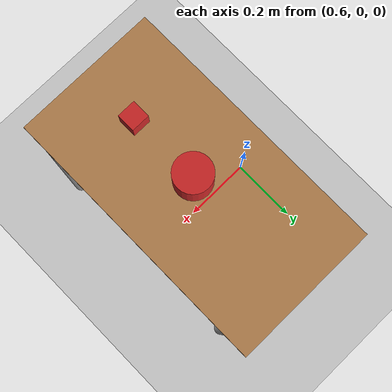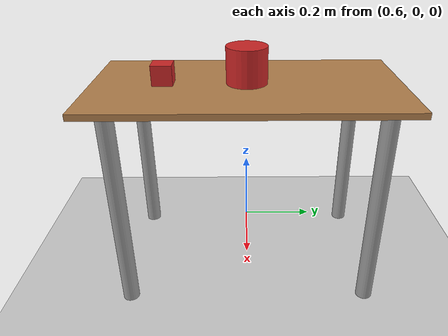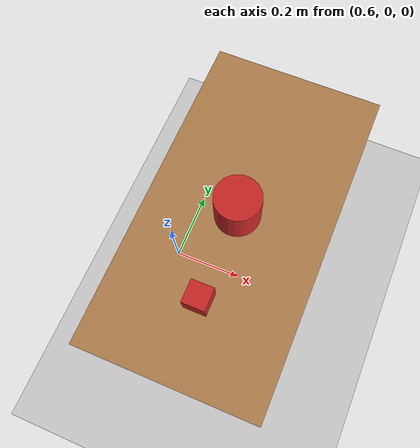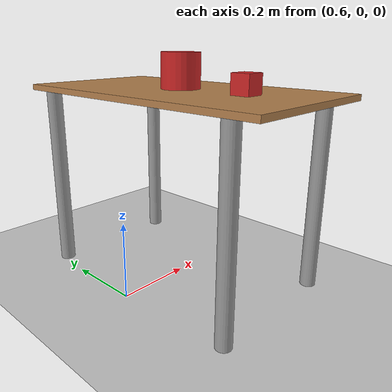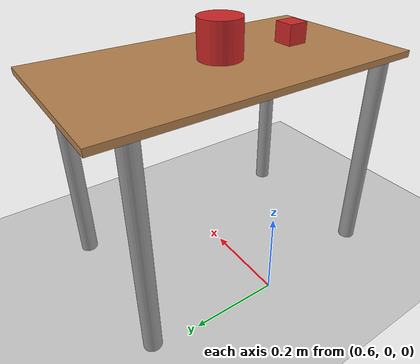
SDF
<sdf version="1.6">
 <world name="stereo_objects_world">
  <scene><ambient>0 0 0 1</ambient><shadows>0</shadows><background>0.7 0.7 0.7 1</background></scene>
  <model name="ground_plane">
   <static>1</static>
   <link name="link">
    <collision name="collision">
     <geometry><plane><normal>0 0 1</normal><size>100 100</size></plane></geometry>
     <surface><friction><ode><mu>100</mu><mu2>50</mu2></ode></friction></surface>
    </collision>
    <visual name="visual">
     <cast_shadows>0</cast_shadows>
     <geometry><plane><normal>0 0 1</normal><size>100 100</size></plane></geometry>
     <material>
      <script><uri>file://media/materials/scripts/gazebo.material</uri><name>Gazebo/Grey</name></script>
     </material>
    </visual>
   </link>
  </model>
  <model name="table">
   <static>1</static>
   <link name="link">
    <collision name="surface">
     <pose>0 0 0.5 0 -0 0</pose>
     <geometry><box><size>0.75 0.4 0.015</size></box></geometry>
     <surface><friction><ode><mu>0.6</mu><mu2>0.6</mu2></ode></friction></surface>
    </collision>
    <visual name="visual1">
     <pose>0 0 0.5 0 -0 0</pose>
     <geometry><box><size>0.75 0.4 0.015</size></box></geometry>
     <material>
      <script><uri>file://media/materials/scripts/gazebo.material</uri><name>Gazebo/Wood</name></script>
     </material>
    </visual>
    <collision name="front_left_leg">
     <pose>0.3 0.18 0.25 0 -0 0</pose>
     <geometry><cylinder><radius>0.02</radius><length>0.5</length></cylinder></geometry>
    </collision>
    <visual name="front_left_leg">
     <pose>0.3 0.18 0.25 0 -0 0</pose>
     <geometry><cylinder><radius>0.02</radius><length>0.5</length></cylinder></geometry>
     <material>
      <script><uri>file://media/materials/scripts/gazebo.material</uri><name>Gazebo/Grey</name></script>
     </material>
    </visual>
    <collision name="front_right_leg">
     <pose>0.3 -0.18 0.25 0 -0 0</pose>
     <geometry><cylinder><radius>0.02</radius><length>0.5</length></cylinder></geometry>
    </collision>
    <visual name="front_right_leg">
     <pose>0.3 -0.18 0.25 0 -0 0</pose>
     <geometry><cylinder><radius>0.02</radius><length>0.5</length></cylinder></geometry>
     <material>
      <script><uri>file://media/materials/scripts/gazebo.material</uri><name>Gazebo/Grey</name></script>
     </material>
    </visual>
    <collision name="back_right_leg">
     <pose>-0.3 -0.18 0.25 0 -0 0</pose>
     <geometry><cylinder><radius>0.02</radius><length>0.5</length></cylinder></geometry>
    </collision>
    <visual name="back_right_leg">
     <pose>-0.3 -0.18 0.25 0 -0 0</pose>
     <geometry><cylinder><radius>0.02</radius><length>0.5</length></cylinder></geometry>
     <material>
      <script><uri>file://media/materials/scripts/gazebo.material</uri><name>Gazebo/Grey</name></script>
     </material>
    </visual>
    <collision name="back_left_leg">
     <pose>-0.3 0.18 0.25 0 -0 0</pose>
     <geometry><cylinder><radius>0.02</radius><length>0.5</length></cylinder></geometry>
    </collision>
    <visual name="back_left_leg">
     <pose>-0.3 0.18 0.25 0 -0 0</pose>
     <geometry><cylinder><radius>0.02</radius><length>0.5</length></cylinder></geometry>
     <material>
      <script><uri>file://media/materials/scripts/gazebo.material</uri><name>Gazebo/Grey</name></script>
     </material>
    </visual>
   </link>
   <pose>0.8 0 0 0 0 -1.57</pose>
  </model>
  <model name="wood_cube_5cm">
   <static>0</static>
   <link name="link">
    <pose>0 0 0.025 0 -0 0</pose>
    <inertial>
     <mass>0.0565</mass>
     <inertia>
      <ixx>2.35417e-05</ixx>
      <ixy>0</ixy>
      <ixz>0</ixz>
      <iyy>2.35417e-05</iyy>
      <iyz>0</iyz>
      <izz>2.35417e-05</izz>
     </inertia>
    </inertial>
    <collision name="collision">
     <geometry><box><size>0.05 0.05 0.05</size></box></geometry>
     <surface>
      <contact>
       <poissons_ratio>0.347</poissons_ratio>
       <elastic_modulus>8.8e+09</elastic_modulus>
       <ode><kp>100000</kp><kd>1</kd><max_vel>1</max_vel><min_depth>0.001</min_depth></ode>
      </contact>
      <friction>
       <torsional>
        <coefficient>1</coefficient>
        <use_patch_radius>0</use_patch_radius>
        <surface_radius>0.05</surface_radius>
       </torsional>
      </friction>
     </surface>
    </collision>
    <visual name="visual">
     <geometry><box><size>0.05 0.05 0.05</size></box></geometry>
     <material>
      <script><uri>file://media/materials/scripts/gazebo.material</uri><name>Gazebo/Red</name></script>
     </material>
    </visual>
   </link>
   <pose>0.8 -0.2 0.506499 0 -0 0</pose>
  </model>
  <model name="wooden_peg">
   <link name="link">
    <pose>0 0 0.04 0 -0 0</pose>
    <inertial>
     <mass>0.0175</mass>
     <inertia>
      <ixx>9.74923e-06</ixx>
      <ixy>0</ixy>
      <ixz>0</ixz>
      <iyy>9.74923e-06</iyy>
      <iyz>0</iyz>
      <izz>8.31797e-07</izz>
     </inertia>
    </inertial>
    <collision name="collision">
     <geometry><cylinder><radius>0.00975</radius><length>0.08</length></cylinder></geometry>
     <surface>
      <contact>
       <poissons_ratio>0.347</poissons_ratio>
       <elastic_modulus>8.8e+09</elastic_modulus>
       <ode><kp>100000</kp><kd>100</kd><max_vel>100</max_vel><min_depth>0.001</min_depth></ode>
      </contact>
      <friction>
       <torsional>
        <coefficient>1</coefficient>
        <use_patch_radius>0</use_patch_radius>
        <surface_radius>0.01</surface_radius>
       </torsional>
      </friction>
     </surface>
    </collision>
    <visual name="visual">
     <geometry><cylinder><radius>0.05</radius><length>0.1</length></cylinder></geometry>
     <material>
      <script><uri>file://media/materials/scripts/gazebo.material</uri><name>Gazebo/Red</name></script>
     </material>
    </visual>
   </link>
   <pose>0.799994 3e-06 0.506572 0.003366 0.006643 1.1e-05</pose>
  </model>
  <gravity>0 0 -9.8</gravity>
  <magnetic_field>6e-06 2.3e-05 -4.2e-05</magnetic_field>
  <atmosphere type="adiabatic"/>
  <physics name="default_physics" default="0" type="ode">
   <max_step_size>0.001</max_step_size>
   <real_time_factor>1</real_time_factor>
   <real_time_update_rate>1000</real_time_update_rate>
  </physics>
  <spherical_coordinates>
   <surface_model>EARTH_WGS84</surface_model>
   <latitude_deg>0</latitude_deg>
   <longitude_deg>0</longitude_deg>
   <elevation>0</elevation>
   <heading_deg>0</heading_deg>
  </spherical_coordinates>
  <light name="user_spot_light_0" type="spot">
   <pose>0.017413 0.007737 1 0 -0 0</pose>
   <diffuse>0.5 0.5 0.5 1</diffuse>
   <specular>0.1 0.1 0.1 1</specular>
   <direction>0 0 -1</direction>
   <attenuation>
    <range>20</range>
    <constant>0.5</constant>
    <linear>0.01</linear>
    <quadratic>0.001</quadratic>
   </attenuation>
   <cast_shadows>0</cast_shadows>
   <spot><inner_angle>0.6</inner_angle><outer_angle>1</outer_angle><falloff>1</falloff></spot>
  </light>
  <light name="user_point_light_0" type="point">
   <pose>0.014903 0.028441 1 0 -0 0</pose>
   <diffuse>0.5 0.5 0.5 1</diffuse>
   <specular>0.1 0.1 0.1 1</specular>
   <attenuation>
    <range>20</range>
    <constant>0.5</constant>
    <linear>0.01</linear>
    <quadratic>0.001</quadratic>
   </attenuation>
   <cast_shadows>0</cast_shadows>
   <direction>0 0 -1</direction>
  </light>
 </world>
</sdf>
